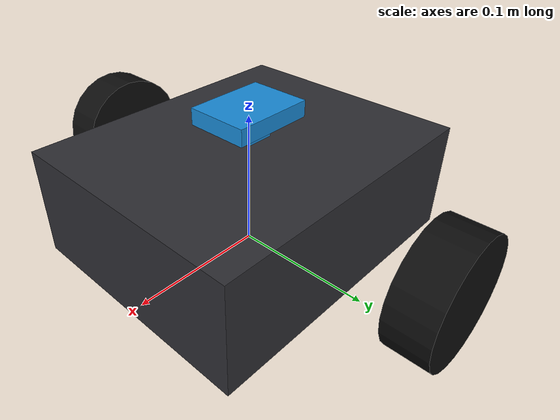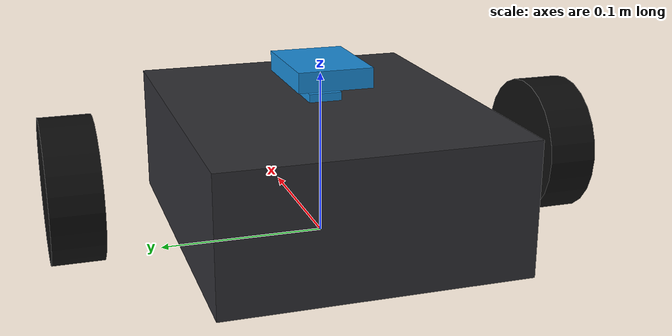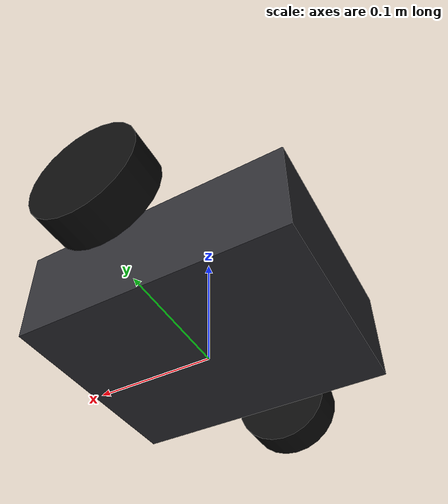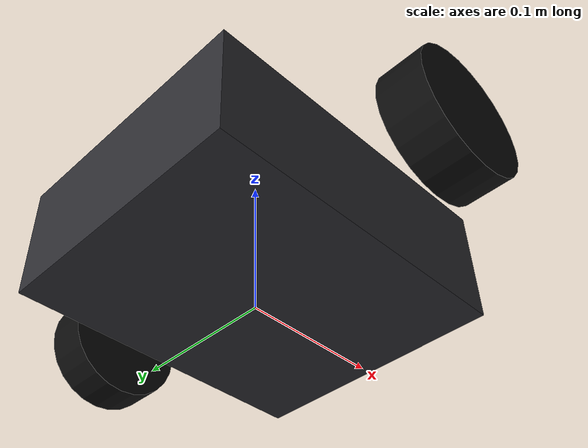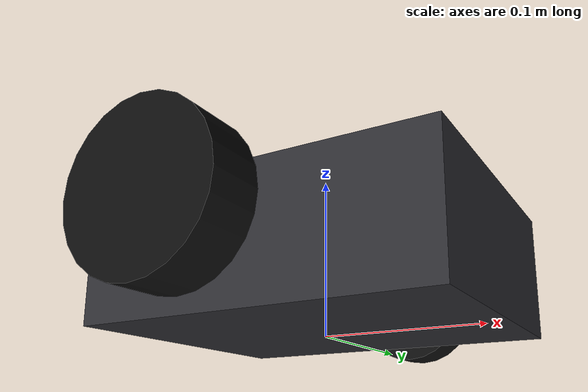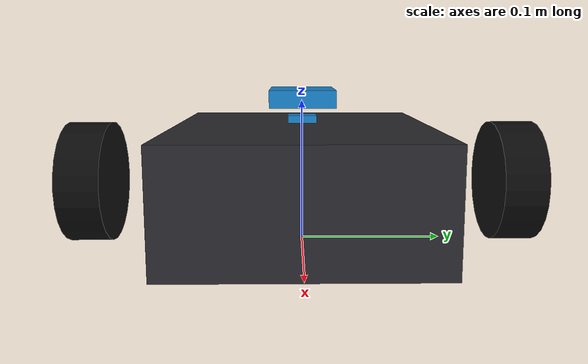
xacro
<?xml version="1.0"?>
<robot name="biba" xmlns:xacro="http://www.ros.org/wiki/xacro">

  <xacro:property name="wheel_separation" value="0.30"/>
  <xacro:property name="wheel_radius"     value="0.0425"/>
  <xacro:property name="wheel_width"      value="0.030"/>
  <xacro:property name="base_length"      value="0.220"/>
  <xacro:property name="base_width"       value="0.180"/>
  <xacro:property name="base_height"      value="0.080"/>
  <!-- Height of base_link origin above the ground (= wheel_radius). -->
  <xacro:property name="base_z_offset"    value="${wheel_radius}"/>

  <!-- Mass placeholders. Inertia tensors are diagonal box approximations. -->
  <xacro:property name="base_mass"        value="2.0"/>
  <xacro:property name="wheel_mass"       value="0.150"/>

  <!-- =================================================================
       Materials
       ================================================================= -->
  <material name="biba_chassis"><color rgba="0.18 0.18 0.20 1.0"/></material>
  <material name="biba_wheel"><color rgba="0.05 0.05 0.05 1.0"/></material>
  <material name="biba_sensor"><color rgba="0.10 0.55 0.85 1.0"/></material>

  <!-- =================================================================
       Reusable macros
       ================================================================= -->
  <xacro:macro name="box_inertia" params="m x y z">
    <inertial>
      <mass value="${m}"/>
      <inertia
        ixx="${m * (y*y + z*z) / 12.0}" ixy="0.0" ixz="0.0"
        iyy="${m * (x*x + z*z) / 12.0}" iyz="0.0"
        izz="${m * (x*x + y*y) / 12.0}"/>
    </inertial>
  </xacro:macro>

  <xacro:macro name="cylinder_inertia" params="m r h">
    <inertial>
      <mass value="${m}"/>
      <inertia
        ixx="${m * (3*r*r + h*h) / 12.0}" ixy="0.0" ixz="0.0"
        iyy="${m * (3*r*r + h*h) / 12.0}" iyz="0.0"
        izz="${m * r*r / 2.0}"/>
    </inertial>
  </xacro:macro>

  <xacro:macro name="wheel" params="prefix y_sign">
    <link name="${prefix}_wheel_link">
      <visual>
        <origin xyz="0 0 0" rpy="${pi/2} 0 0"/>
        <geometry>
          <cylinder radius="${wheel_radius}" length="${wheel_width}"/>
        </geometry>
        <material name="biba_wheel"/>
      </visual>
      <collision>
        <origin xyz="0 0 0" rpy="${pi/2} 0 0"/>
        <geometry>
          <cylinder radius="${wheel_radius}" length="${wheel_width}"/>
        </geometry>
      </collision>
      <xacro:cylinder_inertia m="${wheel_mass}" r="${wheel_radius}" h="${wheel_width}"/>
    </link>

    <joint name="${prefix}_wheel_joint" type="continuous">
      <parent link="base_link"/>
      <child link="${prefix}_wheel_link"/>
      <origin xyz="0 ${y_sign * wheel_separation / 2.0} 0" rpy="0 0 0"/>
      <axis xyz="0 1 0"/>
      <dynamics damping="0.01" friction="0.05"/>
    </joint>
  </xacro:macro>

  <!-- =================================================================
       Base
       ================================================================= -->
  <link name="base_footprint"/>

  <joint name="base_footprint_to_base_link" type="fixed">
    <parent link="base_footprint"/>
    <child  link="base_link"/>
    <origin xyz="0 0 ${base_z_offset}" rpy="0 0 0"/>
  </joint>

  <link name="base_link">
    <visual>
      <origin xyz="0 0 0" rpy="0 0 0"/>
      <geometry>
        <box size="${base_length} ${base_width} ${base_height}"/>
      </geometry>
      <material name="biba_chassis"/>
    </visual>
    <collision>
      <origin xyz="0 0 0" rpy="0 0 0"/>
      <geometry>
        <box size="${base_length} ${base_width} ${base_height}"/>
      </geometry>
    </collision>
    <xacro:box_inertia m="${base_mass}" x="${base_length}" y="${base_width}" z="${base_height}"/>
  </link>

  <!-- =================================================================
       Wheels
       ================================================================= -->
  <xacro:wheel prefix="left"  y_sign="1"/>
  <xacro:wheel prefix="right" y_sign="-1"/>

  <!-- =================================================================
       Sensor / addon mounts (placeholder transforms)
       ================================================================= -->
  <link name="imu_link">
    <visual>
      <geometry><box size="0.020 0.020 0.005"/></geometry>
      <material name="biba_sensor"/>
    </visual>
  </link>
  <joint name="base_to_imu" type="fixed">
    <parent link="base_link"/>
    <child  link="imu_link"/>
    <origin xyz="0 0 ${base_height/2.0 + 0.005}" rpy="0 0 0"/>
  </joint>

  <link name="stm32_link">
    <visual>
      <geometry><box size="0.060 0.045 0.012"/></geometry>
      <material name="biba_sensor"/>
    </visual>
  </link>
  <joint name="base_to_stm32" type="fixed">
    <parent link="base_link"/>
    <child  link="stm32_link"/>
    <origin xyz="0 0 ${base_height/2.0 + 0.020}" rpy="0 0 0"/>
  </joint>

  <ros2_control name="BibaSystem" type="system">
    <hardware>
      <plugin>biba_hardware_stm32/BibaStm32SystemHardware</plugin>
      <param name="spi_device">/dev/spidev0.0</param>
      <param name="spi_speed_hz">1000000</param>
      <param name="wheel_radius">${wheel_radius}</param>
      <param name="max_wheel_speed">20.0</param>
    </hardware>
    <joint name="left_wheel_joint">
      <command_interface name="velocity"/>
      <state_interface name="position"/>
      <state_interface name="velocity"/>
    </joint>
    <joint name="right_wheel_joint">
      <command_interface name="velocity"/>
      <state_interface name="position"/>
      <state_interface name="velocity"/>
    </joint>
  </ros2_control>

</robot>
